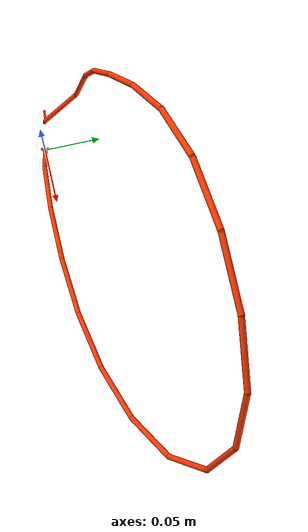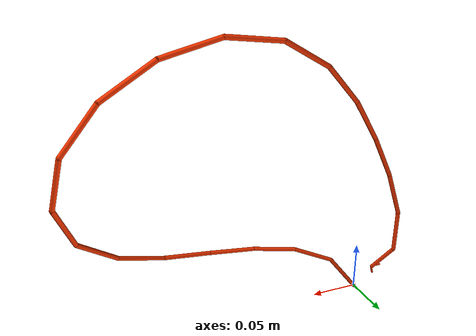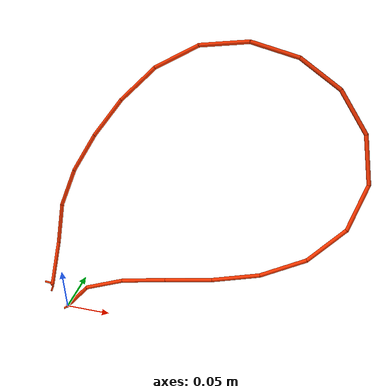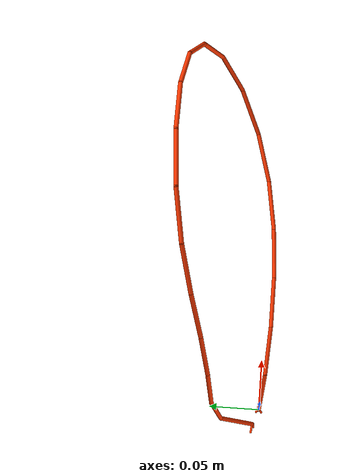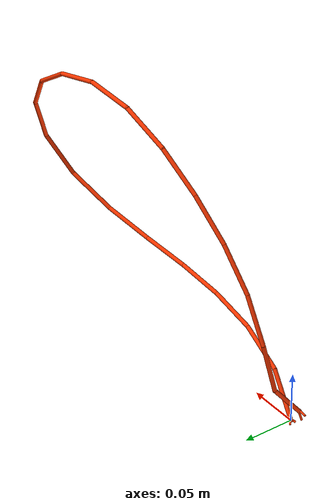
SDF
<sdf version="1.9">
 <model name="cable">
  <link name="cable_end_0">
   <inertial>
    <mass>0.0</mass>
    <inertia><ixx>0.001</ixx><ixy>0</ixy><ixz>0</ixz><iyy>0.001</iyy><iyz>0</iyz><izz>0.001</izz></inertia>
   </inertial>
   <collision name="base_collision">
    <geometry><sphere><radius>0.002</radius></sphere></geometry>
    <surface>
     <friction>
      <torsional><coefficient>0.05</coefficient></torsional>
      <bullet><friction>0.05</friction><friction2>0.05</friction2></bullet>
     </friction>
    </surface>
   </collision>
   <visual name="base_vis">
    <geometry><sphere><radius>0.002</radius></sphere></geometry>
    <material>
     <diffuse>1 0.219999999 0 1</diffuse>
     <specular>0.5 0.5 0.5 1</specular>
     <pbr><metal><roughness>0.01</roughness><metalness>0.01</metalness></metal></pbr>
    </material>
   </visual>
  </link>
  <joint name="joint_end_0" type="ball">
   <pose>-5.9292300000000002e-21 -8.0468100000000002e-20 -0.024 0.024762999999999993 1.7999999999999909e-05 -0.061838999999999998</pose>
   <child>link_1</child>
   <parent>cable_end_0</parent>
   <axis>
    <xyz>1.9813200181550693e-16 -1.5504091066549018e-17 1</xyz>
    <limit>
     <lower>-inf</lower>
     <upper>inf</upper>
     <effort>inf</effort>
     <velocity>inf</velocity>
     <stiffness>100000000</stiffness>
     <dissipation>1</dissipation>
    </limit>
    <dynamics>
     <spring_reference>0</spring_reference>
     <spring_stiffness>0</spring_stiffness>
     <damping>0.20000000000000001</damping>
     <friction>0</friction>
    </dynamics>
   </axis>
  </joint>
  <link name="link_1">
   <pose>0.014819747152165608 -0.0017399206733917372 0.018794240782019161 0.18667383890181891 0.64837595547957994 0.18627118492373859</pose>
   <inertial>
    <mass>0.0</mass>
    <inertia><ixx>0.001</ixx><ixy>0</ixy><ixz>0</ixz><iyy>0.001</iyy><iyz>0</iyz><izz>0.001</izz></inertia>
   </inertial>
   <collision name="link_1_collision">
    <pose>0 0 0.0060000000000000001 0 0 0</pose>
    <geometry><capsule><length>0.036</length><radius>0.002</radius></capsule></geometry>
    <surface>
     <friction>
      <torsional><coefficient>0.050000000000000003</coefficient></torsional>
      <bullet><friction>0.050000000000000003</friction><friction2>0.050000000000000003</friction2></bullet>
     </friction>
    </surface>
   </collision>
   <visual name="link_1_vis">
    <geometry><capsule><length>0.048</length><radius>0.002</radius></capsule></geometry>
    <material>
     <diffuse>1 0.219999999 0 1</diffuse>
     <specular>0.5 0.5 0.5 1</specular>
     <pbr><metal><roughness>0.01</roughness><metalness>0.01</metalness></metal></pbr>
    </material>
   </visual>
  </link>
  <link name="link_2">
   <pose>0.051217620240665118 -0.0045817848733566147 0.048027952526810774 0.71782103551369159 0.95497618826384267 0.76800844832658799</pose>
   <inertial>
    <mass>0.0</mass>
    <inertia><ixx>0.001</ixx><ixy>0</ixy><ixz>0</ixz><iyy>0.001</iyy><iyz>0</iyz><izz>0.001</izz></inertia>
   </inertial>
   <collision name="link_2_collision">
    <geometry><capsule><length>0.048</length><radius>0.002</radius></capsule></geometry>
    <surface>
     <friction>
      <torsional><coefficient>0.050000000000000003</coefficient></torsional>
      <bullet><friction>0.050000000000000003</friction><friction2>0.050000000000000003</friction2></bullet>
     </friction>
    </surface>
   </collision>
   <visual name="link_2_vis">
    <geometry><capsule><length>0.048</length><radius>0.002</radius></capsule></geometry>
    <material>
     <diffuse>1 0.219999999 0 1</diffuse>
     <specular>0.5 0.5 0.5 1</specular>
     <pbr><metal><roughness>0.01</roughness><metalness>0.01</metalness></metal></pbr>
    </material>
   </visual>
  </link>
  <link name="link_3">
   <pose>0.096195168224190386 -0.0055586819898655049 0.063767101721349195 1.2411753795281291 0.81971398965310749 1.3311919485169077</pose>
   <inertial>
    <mass>0.0</mass>
    <inertia><ixx>0.001</ixx><ixy>0</ixy><ixz>0</ixz><iyy>0.001</iyy><iyz>0</iyz><izz>0.001</izz></inertia>
   </inertial>
   <collision name="link_3_collision">
    <geometry><capsule><length>0.048</length><radius>0.002</radius></capsule></geometry>
    <surface>
     <friction>
      <torsional><coefficient>0.050000000000000003</coefficient></torsional>
      <bullet><friction>0.050000000000000003</friction><friction2>0.050000000000000003</friction2></bullet>
     </friction>
    </surface>
   </collision>
   <visual name="link_3_vis">
    <geometry><capsule><length>0.048</length><radius>0.002</radius></capsule></geometry>
    <material>
     <diffuse>1 0.219999999 0 1</diffuse>
     <specular>0.5 0.5 0.5 1</specular>
     <pbr><metal><roughness>0.01</roughness><metalness>0.01</metalness></metal></pbr>
    </material>
   </visual>
  </link>
  <link name="link_4">
   <pose>0.14325005118936951 -0.0037154553753084019 0.072641729123881921 1.4025384617609209 0.47240662802222544 1.5660895369557621</pose>
   <inertial>
    <mass>0.0</mass>
    <inertia><ixx>0.001</ixx><ixy>0</ixy><ixz>0</ixz><iyy>0.001</iyy><iyz>0</iyz><izz>0.001</izz></inertia>
   </inertial>
   <collision name="link_4_collision">
    <geometry><capsule><length>0.048</length><radius>0.002</radius></capsule></geometry>
    <surface>
     <friction>
      <torsional><coefficient>0.050000000000000003</coefficient></torsional>
      <bullet><friction>0.050000000000000003</friction><friction2>0.050000000000000003</friction2></bullet>
     </friction>
    </surface>
   </collision>
   <visual name="link_4_vis">
    <geometry><capsule><length>0.048</length><radius>0.002</radius></capsule></geometry>
    <material>
     <diffuse>1 0.219999999 0 1</diffuse>
     <specular>0.5 0.5 0.5 1</specular>
     <pbr><metal><roughness>0.01</roughness><metalness>0.01</metalness></metal></pbr>
    </material>
   </visual>
  </link>
  <link name="link_5">
   <pose>0.19010418330564605 0.002044484465481694 0.080702087852424748 1.3825902243832859 0.027099831268072066 1.7382011710223997</pose>
   <inertial>
    <mass>0.0</mass>
    <inertia><ixx>0.001</ixx><ixy>0</ixy><ixz>0</ixz><iyy>0.001</iyy><iyz>0</iyz><izz>0.001</izz></inertia>
   </inertial>
   <collision name="link_5_collision">
    <geometry><capsule><length>0.048</length><radius>0.002</radius></capsule></geometry>
    <surface>
     <friction>
      <torsional><coefficient>0.050000000000000003</coefficient></torsional>
      <bullet><friction>0.050000000000000003</friction><friction2>0.050000000000000003</friction2></bullet>
     </friction>
    </surface>
   </collision>
   <visual name="link_5_vis">
    <geometry><capsule><length>0.048</length><radius>0.002</radius></capsule></geometry>
    <material>
     <diffuse>1 0.219999999 0 1</diffuse>
     <specular>0.5 0.5 0.5 1</specular>
     <pbr><metal><roughness>0.01</roughness><metalness>0.01</metalness></metal></pbr>
    </material>
   </visual>
  </link>
  <link name="link_6">
   <pose>0.23471464542253773 0.012878040629696885 0.093441657271720047 1.1755780259895565 -0.46057093362886986 2.0613586099848908</pose>
   <inertial>
    <mass>0.0</mass>
    <inertia><ixx>0.001</ixx><ixy>0</ixy><ixz>0</ixz><iyy>0.001</iyy><iyz>0</iyz><izz>0.001</izz></inertia>
   </inertial>
   <collision name="link_6_collision">
    <geometry><capsule><length>0.048</length><radius>0.002</radius></capsule></geometry>
    <surface>
     <friction>
      <torsional><coefficient>0.05</coefficient></torsional>
      <bullet><friction>0.05</friction><friction2>0.05</friction2></bullet>
     </friction>
    </surface>
   </collision>
   <visual name="link_6_vis">
    <geometry><capsule><length>0.048</length><radius>0.002</radius></capsule></geometry>
    <material>
     <diffuse>1 0.219999999 0 1</diffuse>
     <specular>0.5 0.5 0.5 1</specular>
     <pbr><metal><roughness>0.01</roughness><metalness>0.01</metalness></metal></pbr>
    </material>
   </visual>
  </link>
  <link name="link_7">
   <pose>0.27273856429821186 0.028876552044857784 0.11613283463758543 0.61880592056634154 -0.7341233213716245 2.8322322035791392</pose>
   <inertial>
    <mass>0.0</mass>
    <inertia><ixx>0.001</ixx><ixy>0</ixy><ixz>0</ixz><iyy>0.001</iyy><iyz>0</iyz><izz>0.001</izz></inertia>
   </inertial>
   <collision name="link_7_collision">
    <geometry><capsule><length>0.048</length><radius>0.002</radius></capsule></geometry>
    <surface>
     <friction>
      <torsional><coefficient>0.050000000000000003</coefficient></torsional>
      <bullet><friction>0.050000000000000003</friction><friction2>0.050000000000000003</friction2></bullet>
     </friction>
    </surface>
   </collision>
   <visual name="link_7_vis">
    <geometry><capsule><length>0.048</length><radius>0.002</radius></capsule></geometry>
    <material>
     <diffuse>1 0.219999999 0 1</diffuse>
     <specular>0.5 0.5 0.5 1</specular>
     <pbr><metal><roughness>0.01</roughness><metalness>0.01</metalness></metal></pbr>
    </material>
   </visual>
  </link>
  <link name="link_8">
   <pose>0.29639117909238588 0.048050174628466918 0.15100712317523862 0.22225871726667798 -0.4950676882834748 -2.6299292070296829</pose>
   <inertial>
    <mass>0.0</mass>
    <inertia><ixx>0.001</ixx><ixy>0</ixy><ixz>0</ixz><iyy>0.001</iyy><iyz>0</iyz><izz>0.001</izz></inertia>
   </inertial>
   <collision name="link_8_collision">
    <geometry><capsule><length>0.048</length><radius>0.002</radius></capsule></geometry>
    <surface>
     <friction>
      <torsional><coefficient>0.050000000000000003</coefficient></torsional>
      <bullet><friction>0.050000000000000003</friction><friction2>0.050000000000000003</friction2></bullet>
     </friction>
    </surface>
   </collision>
   <visual name="link_8_vis">
    <geometry><capsule><length>0.048</length><radius>0.002</radius></capsule></geometry>
    <material>
     <diffuse>1 0.219999999 0 1</diffuse>
     <specular>0.5 0.5 0.5 1</specular>
     <pbr><metal><roughness>0.01</roughness><metalness>0.01</metalness></metal></pbr>
    </material>
   </visual>
   <collision name="sphere_8_collision">
    <pose>0 0 0.024 0 0 0</pose>
    <geometry><sphere><radius>0.002</radius></sphere></geometry>
    <surface>
     <friction>
      <torsional><coefficient>0.050000000000000003</coefficient></torsional>
      <bullet><friction>0.050000000000000003</friction><friction2>0.050000000000000003</friction2></bullet>
     </friction>
    </surface>
   </collision>
   <visual name="sphere_8_vis">
    <pose>0 0 0.024 0 0 0</pose>
    <geometry><sphere><radius>0.002</radius></sphere></geometry>
    <material>
     <diffuse>1 0.219999999 0 1</diffuse>
     <specular>0.5 0.5 0.5 1</specular>
     <pbr><metal><roughness>0.01</roughness><metalness>0.01</metalness></metal></pbr>
    </material>
   </visual>
  </link>
  <link name="link_9">
   <pose>0.29883494157350765 0.06604229984663601 0.19343356390563535 0.35289123975868442 -0.18854795280962855 -2.1511196256483762</pose>
   <inertial>
    <mass>0.0</mass>
    <inertia><ixx>0.001</ixx><ixy>0</ixy><ixz>0</ixz><iyy>0.001</iyy><iyz>0</iyz><izz>0.001</izz></inertia>
   </inertial>
   <collision name="link_9_collision">
    <geometry><capsule><length>0.048</length><radius>0.002</radius></capsule></geometry>
    <surface>
     <friction>
      <torsional><coefficient>0.050000000000000003</coefficient></torsional>
      <bullet><friction>0.050000000000000003</friction><friction2>0.050000000000000003</friction2></bullet>
     </friction>
    </surface>
   </collision>
   <visual name="link_9_vis">
    <geometry><capsule><length>0.048</length><radius>0.002</radius></capsule></geometry>
    <material>
     <diffuse>1 0.219999999 0 1</diffuse>
     <specular>0.5 0.5 0.5 1</specular>
     <pbr><metal><roughness>0.01</roughness><metalness>0.01</metalness></metal></pbr>
    </material>
   </visual>
   <collision name="sphere_9_collision">
    <pose>0 0 0.024 0 0 0</pose>
    <geometry><sphere><radius>0.002</radius></sphere></geometry>
    <surface>
     <friction>
      <torsional><coefficient>0.050000000000000003</coefficient></torsional>
      <bullet><friction>0.050000000000000003</friction><friction2>0.050000000000000003</friction2></bullet>
     </friction>
    </surface>
   </collision>
   <visual name="sphere_9_vis">
    <pose>0 0 0.024 0 0 0</pose>
    <geometry><sphere><radius>0.002</radius></sphere></geometry>
    <material>
     <diffuse>1 0.219999999 0 1</diffuse>
     <specular>0.5 0.5 0.5 1</specular>
     <pbr><metal><roughness>0.01</roughness><metalness>0.01</metalness></metal></pbr>
    </material>
   </visual>
  </link>
  <link name="link_10">
   <pose>0.28019441807568857 0.078906295380847286 0.23414893079513596 0.66792593646537202 -0.062195666117625718 -1.8242685532177023</pose>
   <inertial>
    <mass>0.0</mass>
    <inertia><ixx>0.001</ixx><ixy>0</ixy><ixz>0</ixz><iyy>0.001</iyy><iyz>0</iyz><izz>0.001</izz></inertia>
   </inertial>
   <collision name="link_10_collision">
    <geometry><capsule><length>0.048</length><radius>0.002</radius></capsule></geometry>
    <surface>
     <friction>
      <torsional><coefficient>0.050000000000000003</coefficient></torsional>
      <bullet><friction>0.050000000000000003</friction><friction2>0.050000000000000003</friction2></bullet>
     </friction>
    </surface>
   </collision>
   <visual name="link_10_vis">
    <geometry><capsule><length>0.048</length><radius>0.002</radius></capsule></geometry>
    <material>
     <diffuse>1 0.219999999 0 1</diffuse>
     <specular>0.5 0.5 0.5 1</specular>
     <pbr><metal><roughness>0.01</roughness><metalness>0.01</metalness></metal></pbr>
    </material>
   </visual>
   <collision name="sphere_10_collision">
    <pose>0 0 0.024 0 0 0</pose>
    <geometry><sphere><radius>0.002</radius></sphere></geometry>
    <surface>
     <friction>
      <torsional><coefficient>0.050000000000000003</coefficient></torsional>
      <bullet><friction>0.050000000000000003</friction><friction2>0.050000000000000003</friction2></bullet>
     </friction>
    </surface>
   </collision>
   <visual name="sphere_10_vis">
    <pose>0 0 0.024 0 0 0</pose>
    <geometry><sphere><radius>0.002</radius></sphere></geometry>
    <material>
     <diffuse>1 0.219999999 0 1</diffuse>
     <specular>0.5 0.5 0.5 1</specular>
     <pbr><metal><roughness>0.01</roughness><metalness>0.01</metalness></metal></pbr>
    </material>
   </visual>
  </link>
  <link name="link_11">
   <pose>0.24608655512569744 0.085546207874769936 0.26574303981633546 0.9996926413854923 -0.091454028217593672 -1.6017398922236008</pose>
   <inertial>
    <mass>0.0</mass>
    <inertia><ixx>0.001</ixx><ixy>0</ixy><ixz>0</ixz><iyy>0.001</iyy><iyz>0</iyz><izz>0.001</izz></inertia>
   </inertial>
   <collision name="link_11_collision">
    <geometry><capsule><length>0.048</length><radius>0.002</radius></capsule></geometry>
    <surface>
     <friction>
      <torsional><coefficient>0.050000000000000003</coefficient></torsional>
      <bullet><friction>0.050000000000000003</friction><friction2>0.050000000000000003</friction2></bullet>
     </friction>
    </surface>
   </collision>
   <visual name="link_11_vis">
    <geometry><capsule><length>0.048</length><radius>0.002</radius></capsule></geometry>
    <material>
     <diffuse>1 0.219999999 0 1</diffuse>
     <specular>0.5 0.5 0.5 1</specular>
     <pbr><metal><roughness>0.01</roughness><metalness>0.01</metalness></metal></pbr>
    </material>
   </visual>
   <collision name="sphere_11_collision">
    <pose>0 0 0.024 0 0 0</pose>
    <geometry><sphere><radius>0.002</radius></sphere></geometry>
    <surface>
     <friction>
      <torsional><coefficient>0.050000000000000003</coefficient></torsional>
      <bullet><friction>0.050000000000000003</friction><friction2>0.050000000000000003</friction2></bullet>
     </friction>
    </surface>
   </collision>
   <visual name="sphere_11_vis">
    <pose>0 0 0.024 0 0 0</pose>
    <geometry><sphere><radius>0.002</radius></sphere></geometry>
    <material>
     <diffuse>1 0.219999999 0 1</diffuse>
     <specular>0.5 0.5 0.5 1</specular>
     <pbr><metal><roughness>0.01</roughness><metalness>0.01</metalness></metal></pbr>
    </material>
   </visual>
  </link>
  <link name="link_12">
   <pose>0.20287489352286281 0.086985596607584398 0.28442008764742138 1.317518732075605 -0.23865626183528538 -1.4938780196794386</pose>
   <inertial>
    <mass>0.0</mass>
    <inertia><ixx>0.001</ixx><ixy>0</ixy><ixz>0</ixz><iyy>0.001</iyy><iyz>0</iyz><izz>0.001</izz></inertia>
   </inertial>
   <collision name="link_12_collision">
    <geometry><capsule><length>0.048</length><radius>0.002</radius></capsule></geometry>
    <surface>
     <friction>
      <torsional><coefficient>0.050000000000000003</coefficient></torsional>
      <bullet><friction>0.050000000000000003</friction><friction2>0.050000000000000003</friction2></bullet>
     </friction>
    </surface>
   </collision>
   <visual name="link_12_vis">
    <geometry><capsule><length>0.048</length><radius>0.002</radius></capsule></geometry>
    <material>
     <diffuse>1 0.219999999 0 1</diffuse>
     <specular>0.5 0.5 0.5 1</specular>
     <pbr><metal><roughness>0.01</roughness><metalness>0.01</metalness></metal></pbr>
    </material>
   </visual>
   <collision name="sphere_12_collision">
    <pose>0 0 0.024 0 0 0</pose>
    <geometry><sphere><radius>0.002</radius></sphere></geometry>
    <surface>
     <friction>
      <torsional><coefficient>0.050000000000000003</coefficient></torsional>
      <bullet><friction>0.050000000000000003</friction><friction2>0.050000000000000003</friction2></bullet>
     </friction>
    </surface>
   </collision>
   <visual name="sphere_12_vis">
    <pose>0 0 0.024 0 0 0</pose>
    <geometry><sphere><radius>0.002</radius></sphere></geometry>
    <material>
     <diffuse>1 0.219999999 0 1</diffuse>
     <specular>0.5 0.5 0.5 1</specular>
     <pbr><metal><roughness>0.01</roughness><metalness>0.01</metalness></metal></pbr>
    </material>
   </visual>
  </link>
  <link name="link_13">
   <pose>0.15618997105147026 0.084697426921248237 0.28746919512180302 1.7024008950349943 -0.48041282097612337 -1.5495117244976766</pose>
   <inertial>
    <mass>0.0</mass>
    <inertia><ixx>0.001</ixx><ixy>0</ixy><ixz>0</ixz><iyy>0.001</iyy><iyz>0</iyz><izz>0.001</izz></inertia>
   </inertial>
   <collision name="link_13_collision">
    <geometry><capsule><length>0.048</length><radius>0.002</radius></capsule></geometry>
    <surface>
     <friction>
      <torsional><coefficient>0.050000000000000003</coefficient></torsional>
      <bullet><friction>0.050000000000000003</friction><friction2>0.050000000000000003</friction2></bullet>
     </friction>
    </surface>
   </collision>
   <visual name="link_13_vis">
    <geometry><capsule><length>0.048</length><radius>0.002</radius></capsule></geometry>
    <material>
     <diffuse>1 0.219999999 0 1</diffuse>
     <specular>0.5 0.5 0.5 1</specular>
     <pbr><metal><roughness>0.01</roughness><metalness>0.01</metalness></metal></pbr>
    </material>
   </visual>
   <collision name="sphere_13_collision">
    <pose>0 0 0.024 0 0 0</pose>
    <geometry><sphere><radius>0.002</radius></sphere></geometry>
    <surface>
     <friction>
      <torsional><coefficient>0.050000000000000003</coefficient></torsional>
      <bullet><friction>0.050000000000000003</friction><friction2>0.050000000000000003</friction2></bullet>
     </friction>
    </surface>
   </collision>
   <visual name="sphere_13_vis">
    <pose>0 0 0.024 0 0 0</pose>
    <geometry><sphere><radius>0.002</radius></sphere></geometry>
    <material>
     <diffuse>1 0.219999999 0 1</diffuse>
     <specular>0.5 0.5 0.5 1</specular>
     <pbr><metal><roughness>0.01</roughness><metalness>0.01</metalness></metal></pbr>
    </material>
   </visual>
  </link>
  <link name="link_14">
   <pose>0.11195389107540676 0.079182014482695323 0.27351702068747452 2.2450652421190944 -0.71752619639368909 -1.882468111688552</pose>
   <inertial>
    <mass>0.0</mass>
    <inertia><ixx>0.001</ixx><ixy>0</ixy><ixz>0</ixz><iyy>0.001</iyy><iyz>0</iyz><izz>0.001</izz></inertia>
   </inertial>
   <collision name="link_14_collision">
    <geometry><capsule><length>0.048</length><radius>0.002</radius></capsule></geometry>
    <surface>
     <friction>
      <torsional><coefficient>0.050000000000000003</coefficient></torsional>
      <bullet><friction>0.050000000000000003</friction><friction2>0.050000000000000003</friction2></bullet>
     </friction>
    </surface>
   </collision>
   <visual name="link_14_vis">
    <geometry><capsule><length>0.048</length><radius>0.002</radius></capsule></geometry>
    <material>
     <diffuse>1 0.219999999 0 1</diffuse>
     <specular>0.5 0.5 0.5 1</specular>
     <pbr><metal><roughness>0.01</roughness><metalness>0.01</metalness></metal></pbr>
    </material>
   </visual>
   <collision name="sphere_14_collision">
    <pose>0 0 0.024 0 0 0</pose>
    <geometry><sphere><radius>0.002</radius></sphere></geometry>
    <surface>
     <friction>
      <torsional><coefficient>0.050000000000000003</coefficient></torsional>
      <bullet><friction>0.050000000000000003</friction><friction2>0.050000000000000003</friction2></bullet>
     </friction>
    </surface>
   </collision>
   <visual name="sphere_14_vis">
    <pose>0 0 0.024 0 0 0</pose>
    <geometry><sphere><radius>0.002</radius></sphere></geometry>
    <material>
     <diffuse>1 0.219999999 0 1</diffuse>
     <specular>0.5 0.5 0.5 1</specular>
     <pbr><metal><roughness>0.01</roughness><metalness>0.01</metalness></metal></pbr>
    </material>
   </visual>
  </link>
  <link name="link_15">
   <pose>0.074470012931548091 0.070861155598836684 0.24598411243864993 2.8346842567993424 -0.77104715779046407 -2.439808815250486</pose>
   <inertial>
    <mass>0.0</mass>
    <inertia><ixx>0.001</ixx><ixy>0</ixy><ixz>0</ixz><iyy>0.001</iyy><iyz>0</iyz><izz>0.001</izz></inertia>
   </inertial>
   <collision name="link_15_collision">
    <geometry><capsule><length>0.048</length><radius>0.002</radius></capsule></geometry>
    <surface>
     <friction>
      <torsional><coefficient>0.050000000000000003</coefficient></torsional>
      <bullet><friction>0.050000000000000003</friction><friction2>0.050000000000000003</friction2></bullet>
     </friction>
    </surface>
   </collision>
   <visual name="link_15_vis">
    <geometry><capsule><length>0.048</length><radius>0.002</radius></capsule></geometry>
    <material>
     <diffuse>1 0.219999999 0 1</diffuse>
     <specular>0.5 0.5 0.5 1</specular>
     <pbr><metal><roughness>0.01</roughness><metalness>0.01</metalness></metal></pbr>
    </material>
   </visual>
   <collision name="sphere_15_collision">
    <pose>0 0 0.024 0 0 0</pose>
    <geometry><sphere><radius>0.002</radius></sphere></geometry>
    <surface>
     <friction>
      <torsional><coefficient>0.050000000000000003</coefficient></torsional>
      <bullet><friction>0.050000000000000003</friction><friction2>0.050000000000000003</friction2></bullet>
     </friction>
    </surface>
   </collision>
   <visual name="sphere_15_vis">
    <pose>0 0 0.024 0 0 0</pose>
    <geometry><sphere><radius>0.002</radius></sphere></geometry>
    <material>
     <diffuse>1 0.219999999 0 1</diffuse>
     <specular>0.5 0.5 0.5 1</specular>
     <pbr><metal><roughness>0.01</roughness><metalness>0.01</metalness></metal></pbr>
    </material>
   </visual>
  </link>
  <link name="link_16">
   <pose>0.043548977720494708 0.061318958805630347 0.21089491444488995 -3.0634429596784147 -0.66854836615188551 -2.9390402042338439</pose>
   <inertial>
    <mass>0.0</mass>
    <inertia><ixx>0.001</ixx><ixy>0</ixy><ixz>0</ixz><iyy>0.001</iyy><iyz>0</iyz><izz>0.001</izz></inertia>
   </inertial>
   <collision name="link_16_collision">
    <geometry><capsule><length>0.048</length><radius>0.002</radius></capsule></geometry>
    <surface>
     <friction>
      <torsional><coefficient>0.050000000000000003</coefficient></torsional>
      <bullet><friction>0.050000000000000003</friction><friction2>0.050000000000000003</friction2></bullet>
     </friction>
    </surface>
   </collision>
   <visual name="link_16_vis">
    <geometry><capsule><length>0.048</length><radius>0.002</radius></capsule></geometry>
    <material>
     <diffuse>1 0.219999999 0 1</diffuse>
     <specular>0.5 0.5 0.5 1</specular>
     <pbr><metal><roughness>0.01</roughness><metalness>0.01</metalness></metal></pbr>
    </material>
   </visual>
   <collision name="sphere_16_collision">
    <pose>0 0 0.024 0 0 0</pose>
    <geometry><sphere><radius>0.002</radius></sphere></geometry>
    <surface>
     <friction>
      <torsional><coefficient>0.050000000000000003</coefficient></torsional>
      <bullet><friction>0.050000000000000003</friction><friction2>0.050000000000000003</friction2></bullet>
     </friction>
    </surface>
   </collision>
   <visual name="sphere_16_vis">
    <pose>0 0 0.024 0 0 0</pose>
    <geometry><sphere><radius>0.002</radius></sphere></geometry>
    <material>
     <diffuse>1 0.219999999 0 1</diffuse>
     <specular>0.5 0.5 0.5 1</specular>
     <pbr><metal><roughness>0.01</roughness><metalness>0.01</metalness></metal></pbr>
    </material>
   </visual>
  </link>
  <link name="link_17">
   <pose>0.017193029227812406 0.052931689669931198 0.17182799838632967 -2.8973817899317043 -0.509214211852966 2.9537288827374897</pose>
   <inertial>
    <mass>0.0</mass>
    <inertia><ixx>0.001</ixx><ixy>0</ixy><ixz>0</ixz><iyy>0.001</iyy><iyz>0</iyz><izz>0.001</izz></inertia>
   </inertial>
   <collision name="link_17_collision">
    <geometry><capsule><length>0.048</length><radius>0.002</radius></capsule></geometry>
    <surface>
     <friction>
      <torsional><coefficient>0.050000000000000003</coefficient></torsional>
      <bullet><friction>0.050000000000000003</friction><friction2>0.050000000000000003</friction2></bullet>
     </friction>
    </surface>
   </collision>
   <visual name="link_17_vis">
    <geometry><capsule><length>0.048</length><radius>0.002</radius></capsule></geometry>
    <material>
     <diffuse>1 0.219999999 0 1</diffuse>
     <specular>0.5 0.5 0.5 1</specular>
     <pbr><metal><roughness>0.01</roughness><metalness>0.01</metalness></metal></pbr>
    </material>
   </visual>
   <collision name="sphere_17_collision">
    <pose>0 0 0.024 0 0 0</pose>
    <geometry><sphere><radius>0.002</radius></sphere></geometry>
    <surface>
     <friction>
      <torsional><coefficient>0.050000000000000003</coefficient></torsional>
      <bullet><friction>0.050000000000000003</friction><friction2>0.050000000000000003</friction2></bullet>
     </friction>
    </surface>
   </collision>
   <visual name="sphere_17_vis">
    <pose>0 0 0.024 0 0 0</pose>
    <geometry><sphere><radius>0.002</radius></sphere></geometry>
    <material>
     <diffuse>1 0.219999999 0 1</diffuse>
     <specular>0.5 0.5 0.5 1</specular>
     <pbr><metal><roughness>0.01</roughness><metalness>0.01</metalness></metal></pbr>
    </material>
   </visual>
  </link>
  <link name="link_18">
   <pose>-0.004224603850605968 0.047277245818884234 0.12944388362441953 -2.876163563677991 -0.30765329344395254 2.6324409242363034</pose>
   <inertial>
    <mass>0.0</mass>
    <inertia><ixx>0.001</ixx><ixy>0</ixy><ixz>0</ixz><iyy>0.001</iyy><iyz>0</iyz><izz>0.001</izz></inertia>
   </inertial>
   <collision name="link_18_collision">
    <geometry><capsule><length>0.048</length><radius>0.002</radius></capsule></geometry>
    <surface>
     <friction>
      <torsional><coefficient>0.050000000000000003</coefficient></torsional>
      <bullet><friction>0.050000000000000003</friction><friction2>0.050000000000000003</friction2></bullet>
     </friction>
    </surface>
   </collision>
   <visual name="link_18_vis">
    <geometry><capsule><length>0.048</length><radius>0.002</radius></capsule></geometry>
    <material>
     <diffuse>1 0.219999999 0 1</diffuse>
     <specular>0.5 0.5 0.5 1</specular>
     <pbr><metal><roughness>0.01</roughness><metalness>0.01</metalness></metal></pbr>
    </material>
   </visual>
   <collision name="sphere_18_collision">
    <pose>0 0 0.024 0 0 0</pose>
    <geometry><sphere><radius>0.002</radius></sphere></geometry>
    <surface>
     <friction>
      <torsional><coefficient>0.050000000000000003</coefficient></torsional>
      <bullet><friction>0.050000000000000003</friction><friction2>0.050000000000000003</friction2></bullet>
     </friction>
    </surface>
   </collision>
   <visual name="sphere_18_vis">
    <pose>0 0 0.024 0 0 0</pose>
    <geometry><sphere><radius>0.002</radius></sphere></geometry>
    <material>
     <diffuse>1 0.219999999 0 1</diffuse>
     <specular>0.5 0.5 0.5 1</specular>
     <pbr><metal><roughness>0.01</roughness><metalness>0.01</metalness></metal></pbr>
    </material>
   </visual>
  </link>
  <link name="link_19">
   <pose>-0.016731545993425412 0.040756431993467651 0.084032587722441932 -2.9107842690624079 0.033749791185127644 2.3574664764618625</pose>
   <inertial>
    <mass>0.0</mass>
    <inertia><ixx>0.001</ixx><ixy>0</ixy><ixz>0</ixz><iyy>0.001</iyy><iyz>0</iyz><izz>0.001</izz></inertia>
   </inertial>
   <collision name="link_19_collision">
    <geometry><capsule><length>0.048</length><radius>0.002</radius></capsule></geometry>
    <surface>
     <friction>
      <torsional><coefficient>0.050000000000000003</coefficient></torsional>
      <bullet><friction>0.050000000000000003</friction><friction2>0.050000000000000003</friction2></bullet>
     </friction>
    </surface>
   </collision>
   <visual name="link_19_vis">
    <geometry><capsule><length>0.048</length><radius>0.002</radius></capsule></geometry>
    <material>
     <diffuse>1 0.219999999 0 1</diffuse>
     <specular>0.5 0.5 0.5 1</specular>
     <pbr><metal><roughness>0.01</roughness><metalness>0.01</metalness></metal></pbr>
    </material>
   </visual>
   <collision name="sphere_19_collision">
    <pose>0 0 0.024 0 0 0</pose>
    <geometry><sphere><radius>0.002</radius></sphere></geometry>
    <surface>
     <friction>
      <torsional><coefficient>0.050000000000000003</coefficient></torsional>
      <bullet><friction>0.050000000000000003</friction><friction2>0.050000000000000003</friction2></bullet>
     </friction>
    </surface>
   </collision>
   <visual name="sphere_19_vis">
    <pose>0 0 0.024 0 0 0</pose>
    <geometry><sphere><radius>0.002</radius></sphere></geometry>
    <material>
     <diffuse>1 0.219999999 0 1</diffuse>
     <specular>0.5 0.5 0.5 1</specular>
     <pbr><metal><roughness>0.01</roughness><metalness>0.01</metalness></metal></pbr>
    </material>
   </visual>
  </link>
  <link name="link_20">
   <pose>-0.019105099661882896 0.021072618098588264 0.042173558124603744 -2.8379086168062377 0.6292671281148251 2.1220102744151093</pose>
   <inertial>
    <mass>0.0</mass>
    <inertia><ixx>0.001</ixx><ixy>0</ixy><ixz>0</ixz><iyy>0.001</iyy><iyz>0</iyz><izz>0.001</izz></inertia>
   </inertial>
   <collision name="link_20_collision">
    <geometry><capsule><length>0.048</length><radius>0.002</radius></capsule></geometry>
    <surface>
     <friction>
      <torsional><coefficient>0.050000000000000003</coefficient></torsional>
      <bullet><friction>0.050000000000000003</friction><friction2>0.050000000000000003</friction2></bullet>
     </friction>
    </surface>
   </collision>
   <visual name="link_20_vis">
    <geometry><capsule><length>0.048</length><radius>0.002</radius></capsule></geometry>
    <material>
     <diffuse>1 0.219999999 0 1</diffuse>
     <specular>0.5 0.5 0.5 1</specular>
     <pbr><metal><roughness>0.01</roughness><metalness>0.01</metalness></metal></pbr>
    </material>
   </visual>
   <collision name="sphere_20_collision">
    <pose>0 0 0.024 0 0 0</pose>
    <geometry><sphere><radius>0.002</radius></sphere></geometry>
    <surface>
     <friction>
      <torsional><coefficient>0.050000000000000003</coefficient></torsional>
      <bullet><friction>0.050000000000000003</friction><friction2>0.050000000000000003</friction2></bullet>
     </friction>
    </surface>
   </collision>
   <visual name="sphere_20_vis">
    <pose>0 0 0.024 0 0 0</pose>
    <geometry><sphere><radius>0.002</radius></sphere></geometry>
    <material>
     <diffuse>1 0.219999999 0 1</diffuse>
     <specular>0.5 0.5 0.5 1</specular>
     <pbr><metal><roughness>0.01</roughness><metalness>0.01</metalness></metal></pbr>
    </material>
   </visual>
  </link>
  <joint name="joint_1" type="ball">
   <pose>-1.0842e-19 8.6736199999999997e-19 -0.024 0.057665000000000015 -0.0035260000000000005 -0.14366599999999999</pose>
   <parent>link_1</parent>
   <child>link_2</child>
   <axis>
    <xyz>-2.5557355710914553e-16 -6.9392327170861326e-17 1</xyz>
    <limit>
     <lower>-inf</lower>
     <upper>inf</upper>
     <effort>inf</effort>
     <velocity>inf</velocity>
     <stiffness>100000000</stiffness>
     <dissipation>1</dissipation>
    </limit>
    <dynamics>
     <spring_reference>0</spring_reference>
     <spring_stiffness>0</spring_stiffness>
     <damping>0.20000000000000001</damping>
     <friction>0</friction>
    </dynamics>
   </axis>
  </joint>
  <joint name="joint_2" type="ball">
   <pose>8.6736199999999997e-19 1.73472e-18 -0.024 0.072919999999999971 -0.015119999999999996 -0.18287300000000001</pose>
   <parent>link_2</parent>
   <child>link_3</child>
   <axis>
    <xyz>-4.336808689942141e-19 6.2558465352413594e-17 1</xyz>
    <limit>
     <lower>-inf</lower>
     <upper>inf</upper>
     <effort>inf</effort>
     <velocity>inf</velocity>
     <stiffness>100000000</stiffness>
     <dissipation>1</dissipation>
    </limit>
    <dynamics>
     <spring_reference>0</spring_reference>
     <spring_stiffness>0</spring_stiffness>
     <damping>0.20000000000000001</damping>
     <friction>0</friction>
    </dynamics>
   </axis>
  </joint>
  <joint name="joint_3" type="ball">
   <pose>0 0 -0.024 0.09283799999999999 -0.037758000000000028 -0.23843600000000004</pose>
   <parent>link_3</parent>
   <child>link_4</child>
   <axis>
    <xyz>-1.1102230246251565e-16 1.1102230246251564e-16 1</xyz>
    <limit>
     <lower>-inf</lower>
     <upper>inf</upper>
     <effort>inf</effort>
     <velocity>inf</velocity>
     <stiffness>100000000</stiffness>
     <dissipation>1</dissipation>
    </limit>
    <dynamics>
     <spring_reference>0</spring_reference>
     <spring_stiffness>0</spring_stiffness>
     <damping>0.20000000000000001</damping>
     <friction>0</friction>
    </dynamics>
   </axis>
  </joint>
  <joint name="joint_4" type="ball">
   <pose>-1.3877799999999999e-17 -3.1224999999999998e-17 -0.024 0.11562100000000003 -0.082796999999999996 -0.31582500000000002</pose>
   <parent>link_4</parent>
   <child>link_5</child>
   <axis>
    <xyz>1.3183898417423731e-16 5.5511151231257827e-17 1</xyz>
    <limit>
     <lower>-inf</lower>
     <upper>inf</upper>
     <effort>inf</effort>
     <velocity>inf</velocity>
     <stiffness>100000000</stiffness>
     <dissipation>1</dissipation>
    </limit>
    <dynamics>
     <spring_reference>0</spring_reference>
     <spring_stiffness>0</spring_stiffness>
     <damping>0.20000000000000001</damping>
     <friction>0</friction>
    </dynamics>
   </axis>
  </joint>
  <joint name="joint_5" type="ball">
   <pose>2.7755599999999997e-17 6.9388900000000004e-18 -0.024 0.12748000000000004 -0.17044200000000007 -0.41081300000000026</pose>
   <parent>link_5</parent>
   <child>link_6</child>
   <axis>
    <xyz>-2.0816681711721636e-17 1.1102230246251565e-16 1</xyz>
    <limit>
     <lower>-inf</lower>
     <upper>inf</upper>
     <effort>inf</effort>
     <velocity>inf</velocity>
     <stiffness>100000000</stiffness>
     <dissipation>1</dissipation>
    </limit>
    <dynamics>
     <spring_reference>0</spring_reference>
     <spring_stiffness>0</spring_stiffness>
     <damping>0.20000000000000001</damping>
     <friction>0</friction>
    </dynamics>
   </axis>
  </joint>
  <joint name="joint_6" type="ball">
   <pose>0 -1.3877799999999999e-17 -0.024 0.077454999999999954 -0.3108280000000001 -0.47354099999999982</pose>
   <parent>link_6</parent>
   <child>link_7</child>
   <axis>
    <xyz>-5.8980598183211417e-17 1.3877787807814417e-17 1</xyz>
    <limit>
     <lower>-inf</lower>
     <upper>inf</upper>
     <effort>inf</effort>
     <velocity>inf</velocity>
     <stiffness>100000000</stiffness>
     <dissipation>1</dissipation>
    </limit>
    <dynamics>
     <spring_reference>0</spring_reference>
     <spring_stiffness>0</spring_stiffness>
     <damping>0.20000000000000001</damping>
     <friction>0</friction>
    </dynamics>
   </axis>
  </joint>
  <joint name="joint_7" type="ball">
   <pose>-2.7755599999999997e-17 0 -0.024 -0.099142999999999981 -0.40827100000000011 -0.39838499999999988</pose>
   <parent>link_7</parent>
   <child>link_8</child>
   <axis>
    <xyz>2.2985086056692689e-16 1.960237527853792e-16 1</xyz>
    <limit>
     <lower>-inf</lower>
     <upper>inf</upper>
     <effort>inf</effort>
     <velocity>inf</velocity>
     <stiffness>100000000</stiffness>
     <dissipation>1</dissipation>
    </limit>
    <dynamics>
     <spring_reference>0</spring_reference>
     <spring_stiffness>0</spring_stiffness>
     <damping>0.20000000000000001</damping>
     <friction>0</friction>
    </dynamics>
   </axis>
  </joint>
  <joint name="joint_8" type="ball">
   <pose>-5.5511199999999995e-17 -5.5511199999999995e-17 -0.024 -0.25860899999999998 -0.32846800000000009 -0.24861</pose>
   <parent>link_8</parent>
   <child>link_9</child>
   <axis>
    <xyz>-2.684484579074109e-16 1.5265566588595902e-16 1</xyz>
    <limit>
     <lower>-inf</lower>
     <upper>inf</upper>
     <effort>inf</effort>
     <velocity>inf</velocity>
     <stiffness>100000000</stiffness>
     <dissipation>1</dissipation>
    </limit>
    <dynamics>
     <spring_reference>0</spring_reference>
     <spring_stiffness>0</spring_stiffness>
     <damping>0.20000000000000001</damping>
     <friction>0</friction>
    </dynamics>
   </axis>
  </joint>
  <joint name="joint_9" type="ball">
   <pose>0 0 -0.024 -0.28042499999999998 -0.20139399999999993 -0.16083399999999995</pose>
   <parent>link_9</parent>
   <child>link_10</child>
   <axis>
    <xyz>-7.2858385991025898e-17 -1.0408340855860843e-16 1</xyz>
    <limit>
     <lower>-inf</lower>
     <upper>inf</upper>
     <effort>inf</effort>
     <velocity>inf</velocity>
     <stiffness>100000000</stiffness>
     <dissipation>1</dissipation>
    </limit>
    <dynamics>
     <spring_reference>0</spring_reference>
     <spring_stiffness>0</spring_stiffness>
     <damping>0.20000000000000001</damping>
     <friction>0</friction>
    </dynamics>
   </axis>
  </joint>
  <joint name="joint_10" type="ball">
   <pose>0 0 -0.024 -0.2767980000000001 -0.13009000000000007 -0.12658500000000003</pose>
   <parent>link_10</parent>
   <child>link_11</child>
   <axis>
    <xyz>-1.7347234759768117e-17 -8.3266726846886716e-17 1</xyz>
    <limit>
     <lower>-inf</lower>
     <upper>inf</upper>
     <effort>inf</effort>
     <velocity>inf</velocity>
     <stiffness>100000000</stiffness>
     <dissipation>1</dissipation>
    </limit>
    <dynamics>
     <spring_reference>0</spring_reference>
     <spring_stiffness>0</spring_stiffness>
     <damping>0.20000000000000001</damping>
     <friction>0</friction>
    </dynamics>
   </axis>
  </joint>
  <joint name="joint_11" type="ball">
   <pose>-6.9388900000000004e-18 0 -0.024 -0.31800899999999988 -0.097124000000000016 -0.12714500000000001</pose>
   <parent>link_11</parent>
   <child>link_12</child>
   <axis>
    <xyz>-1.3877787807814457e-17 5.5511151231257827e-17 1</xyz>
    <limit>
     <lower>-inf</lower>
     <upper>inf</upper>
     <effort>inf</effort>
     <velocity>inf</velocity>
     <stiffness>100000000</stiffness>
     <dissipation>1</dissipation>
    </limit>
    <dynamics>
     <spring_reference>0</spring_reference>
     <spring_stiffness>0</spring_stiffness>
     <damping>0.20000000000000001</damping>
     <friction>0</friction>
    </dynamics>
   </axis>
  </joint>
  <joint name="joint_12" type="ball">
   <pose>4.3368099999999998e-19 0 -0.024 -0.41514299999999998 -0.064825000000000021 -0.15662800000000004</pose>
   <parent>link_12</parent>
   <child>link_13</child>
   <axis>
    <xyz>4.8572257327350599e-16 3.8163916471489559e-17 1</xyz>
    <limit>
     <lower>-inf</lower>
     <upper>inf</upper>
     <effort>inf</effort>
     <velocity>inf</velocity>
     <stiffness>100000000</stiffness>
     <dissipation>1</dissipation>
    </limit>
    <dynamics>
     <spring_reference>0</spring_reference>
     <spring_stiffness>0</spring_stiffness>
     <damping>0.20000000000000001</damping>
     <friction>0</friction>
    </dynamics>
   </axis>
  </joint>
  <joint name="joint_13" type="ball">
   <pose>0 2.7755599999999997e-17 -0.024 -0.47514499999999982 0.00481899999999999 -0.19548199999999996</pose>
   <parent>link_13</parent>
   <child>link_14</child>
   <axis>
    <xyz>4.157915331481907e-17 -5.5511151231257815e-17 1</xyz>
    <limit>
     <lower>-inf</lower>
     <upper>inf</upper>
     <effort>inf</effort>
     <velocity>inf</velocity>
     <stiffness>100000000</stiffness>
     <dissipation>1</dissipation>
    </limit>
    <dynamics>
     <spring_reference>0</spring_reference>
     <spring_stiffness>0</spring_stiffness>
     <damping>0.20000000000000001</damping>
     <friction>0</friction>
    </dynamics>
   </axis>
  </joint>
  <joint name="joint_14" type="ball">
   <pose>1.3877799999999999e-17 -5.5511199999999995e-17 -0.024 -0.37640199999999963 0.076180000000000053 -0.18553599999999995</pose>
   <parent>link_14</parent>
   <child>link_15</child>
   <axis>
    <xyz>5.5511151231257815e-17 7.6327832942979512e-17 1</xyz>
    <limit>
     <lower>-inf</lower>
     <upper>inf</upper>
     <effort>inf</effort>
     <velocity>inf</velocity>
     <stiffness>100000000</stiffness>
     <dissipation>1</dissipation>
    </limit>
    <dynamics>
     <spring_reference>0</spring_reference>
     <spring_stiffness>0</spring_stiffness>
     <damping>0.20000000000000001</damping>
     <friction>0</friction>
    </dynamics>
   </axis>
  </joint>
  <joint name="joint_15" type="ball">
   <pose>1.73472e-17 -9.7144500000000003e-17 -0.024 -0.23104200000000003 0.090075999999999989 -0.13426600000000005</pose>
   <parent>link_15</parent>
   <child>link_16</child>
   <axis>
    <xyz>5.2041704279304201e-17 -8.3266726846886728e-17 1</xyz>
    <limit>
     <lower>-inf</lower>
     <upper>inf</upper>
     <effort>inf</effort>
     <velocity>inf</velocity>
     <stiffness>100000000</stiffness>
     <dissipation>1</dissipation>
    </limit>
    <dynamics>
     <spring_reference>0</spring_reference>
     <spring_stiffness>0</spring_stiffness>
     <damping>0.20000000000000001</damping>
     <friction>0</friction>
    </dynamics>
   </axis>
  </joint>
  <joint name="joint_16" type="ball">
   <pose>3.4694499999999997e-18 -5.5511199999999995e-17 -0.024 -0.13905600000000001 0.075479000000000004 -0.092463999999999991</pose>
   <parent>link_16</parent>
   <child>link_17</child>
   <axis>
    <xyz>1.3877787807814444e-17 -2.7755575615628907e-17 1</xyz>
    <limit>
     <lower>-inf</lower>
     <upper>inf</upper>
     <effort>inf</effort>
     <velocity>inf</velocity>
     <stiffness>100000000</stiffness>
     <dissipation>1</dissipation>
    </limit>
    <dynamics>
     <spring_reference>0</spring_reference>
     <spring_stiffness>0</spring_stiffness>
     <damping>0.20000000000000001</damping>
     <friction>0</friction>
    </dynamics>
   </axis>
  </joint>
  <joint name="joint_17" type="ball">
   <pose>-1.04083e-17 6.9388900000000004e-18 -0.024 -0.089686000000000002 0.059461 -0.066655000000000006</pose>
   <parent>link_17</parent>
   <child>link_18</child>
   <axis>
    <xyz>1.6653345369377343e-16 -2.775557561562892e-17 1</xyz>
    <limit>
     <lower>-inf</lower>
     <upper>inf</upper>
     <effort>inf</effort>
     <velocity>inf</velocity>
     <stiffness>100000000</stiffness>
     <dissipation>1</dissipation>
    </limit>
    <dynamics>
     <spring_reference>0</spring_reference>
     <spring_stiffness>0</spring_stiffness>
     <damping>0.20000000000000001</damping>
     <friction>0</friction>
    </dynamics>
   </axis>
  </joint>
  <joint name="joint_18" type="ball">
   <pose>-3.4694499999999997e-18 -2.7755599999999997e-17 -0.024 -0.062118000000000013 0.047213000000000012 -0.050650000000000014</pose>
   <parent>link_18</parent>
   <child>link_19</child>
   <axis>
    <xyz>4.4408920985006262e-16 9.6277152916712794e-17 1</xyz>
    <limit>
     <lower>-inf</lower>
     <upper>inf</upper>
     <effort>inf</effort>
     <velocity>inf</velocity>
     <stiffness>100000000</stiffness>
     <dissipation>1</dissipation>
    </limit>
    <dynamics>
     <spring_reference>0</spring_reference>
     <spring_stiffness>0</spring_stiffness>
     <damping>0.20000000000000001</damping>
     <friction>0</friction>
    </dynamics>
   </axis>
  </joint>
  <joint name="joint_19" type="ball">
   <pose>-6.9388900000000004e-18 -6.9388900000000004e-18 -0.024 -0.045549999999999986 0.038313000000000014 -0.040162000000000003</pose>
   <parent>link_19</parent>
   <child>link_20</child>
   <axis>
    <xyz>1.8735013540549514e-16 2.7755575615628914e-16 1</xyz>
    <limit>
     <lower>-inf</lower>
     <upper>inf</upper>
     <effort>inf</effort>
     <velocity>inf</velocity>
     <stiffness>100000000</stiffness>
     <dissipation>1</dissipation>
    </limit>
    <dynamics>
     <spring_reference>0</spring_reference>
     <spring_stiffness>0</spring_stiffness>
     <damping>0.20000000000000001</damping>
     <friction>0</friction>
    </dynamics>
   </axis>
  </joint>
  <link name="cable_connection_0">
   <inertial>
    <mass>0.01</mass>
    <inertia><ixx>1e-03</ixx><ixy>0</ixy><ixz>0</ixz><iyy>1e-03</iyy><iyz>0</iyz><izz>1e-03</izz></inertia>
   </inertial>
   <pose>1.7161193510695227e-07 -2.0317050514195856e-08 -2.0573089890008056e-07 -0.21237071140616082 -0.63195479276709987 0.038809485418558186</pose>
   <collision name="collision_0">
    <pose>-0.0018027756377319948 0.002 0 0.5880026035475675 1.57079 0</pose>
    <geometry><cylinder><radius>0.001</radius><length>0.0036055512754639895</length></cylinder></geometry>
    <surface>
     <friction>
      <torsional><coefficient>0.05</coefficient></torsional>
      <bullet><friction>0.05</friction><friction2>0.05</friction2></bullet>
     </friction>
    </surface>
   </collision>
   <visual name="visual_0">
    <pose>-0.0018027756377319948 0.002 0 0.58800260356095158 1.5707900000278763 1.7547982117249351e-11</pose>
    <geometry><cylinder><radius>0.001</radius><length>0.0036055512754639895</length></cylinder></geometry>
    <material>
     <diffuse>1 0.219999999 0 1</diffuse>
     <specular>0.5 0.5 0.5 1</specular>
     <pbr><metal><roughness>0.01</roughness><metalness>0.01</metalness></metal></pbr>
    </material>
   </visual>
   <collision name="collision_1">
    <pose>-0.0018027756377319948 -0.002 0 -0.5880026035475675 1.57079 0</pose>
    <geometry><cylinder><radius>0.001</radius><length>0.0036055512754639895</length></cylinder></geometry>
    <surface>
     <friction>
      <torsional><coefficient>0.05</coefficient></torsional>
      <bullet><friction>0.05</friction><friction2>0.05</friction2></bullet>
     </friction>
    </surface>
   </collision>
   <visual name="visual_1">
    <pose>-0.0018027756377319948 -0.002 0 -0.58800260356095158 1.5707900000278763 -1.7547982117249351e-11</pose>
    <geometry><cylinder><radius>0.001</radius><length>0.0036055512754639895</length></cylinder></geometry>
    <material>
     <diffuse>1 0.219999999 0 1</diffuse>
     <specular>0.5 0.5 0.5 1</specular>
     <pbr><metal><roughness>0.01</roughness><metalness>0.01</metalness></metal></pbr>
    </material>
   </visual>
  </link>
  <link name="cable_connection_1">
   <inertial>
    <mass>0.01</mass>
    <inertia><ixx>1e-03</ixx><ixy>0</ixy><ixz>0</ixz><iyy>1e-03</iyy><iyz>0</iyz><izz>1e-03</izz></inertia>
   </inertial>
   <pose>-0.01816015053220843 0.0058330576729706263 0.023660684305841895 -1.3618622312557218 0.60947104933035079 -3.1086968029674726</pose>
   <collision name="collision_0">
    <pose>0.0036763602924631857 -0.0042500000000000003 0 0.61629693740774327 1.5707900000629724 0</pose>
    <geometry><cylinder><radius>0.001</radius><length>0.0073527205849263713</length></cylinder></geometry>
    <surface>
     <friction>
      <torsional><coefficient>0.050000000000000003</coefficient></torsional>
      <bullet><friction>0.050000000000000003</friction><friction2>0.050000000000000003</friction2></bullet>
     </friction>
    </surface>
   </collision>
   <visual name="visual_0">
    <pose>0.0036763602924631857 -0.0042500000000000003 0 0.61629693740774327 1.5707900000629724 0</pose>
    <geometry><cylinder><radius>0.001</radius><length>0.0073527205849263713</length></cylinder></geometry>
    <material>
     <diffuse>1 0.219999999 0 1</diffuse>
     <specular>0.5 0.5 0.5 1</specular>
     <pbr><metal><roughness>0.01</roughness><metalness>0.01</metalness></metal></pbr>
    </material>
   </visual>
   <collision name="collision_1">
    <pose>0.0036763602924631857 0.0042500000000000003 0 -0.61629693740774327 1.5707900000629724 0</pose>
    <geometry><cylinder><radius>0.001</radius><length>0.0073527205849263713</length></cylinder></geometry>
    <surface>
     <friction>
      <torsional><coefficient>0.050000000000000003</coefficient></torsional>
      <bullet><friction>0.050000000000000003</friction><friction2>0.050000000000000003</friction2></bullet>
     </friction>
    </surface>
   </collision>
   <visual name="visual_1">
    <pose>0.0036763602924631857 0.0042500000000000003 0 -0.61629693740774327 1.5707900000629724 0</pose>
    <geometry><cylinder><radius>0.001</radius><length>0.0073527205849263713</length></cylinder></geometry>
    <material>
     <diffuse>1 0.219999999 0 1</diffuse>
     <specular>0.5 0.5 0.5 1</specular>
     <pbr><metal><roughness>0.01</roughness><metalness>0.01</metalness></metal></pbr>
    </material>
   </visual>
  </link>
  <joint name="joint_connection_end_0" type="ball">
   <parent>cable_end_0</parent>
   <child>cable_connection_0</child>
   <axis>
    <xyz>1.3108744620427266e-16 -2.0816681711721685e-17 1</xyz>
    <limit>
     <lower>-inf</lower>
     <upper>inf</upper>
     <effort>inf</effort>
     <velocity>inf</velocity>
     <stiffness>100000000</stiffness>
     <dissipation>1</dissipation>
    </limit>
    <dynamics>
     <spring_reference>0</spring_reference>
     <spring_stiffness>0</spring_stiffness>
     <damping>0.20000000000000001</damping>
     <friction>0</friction>
    </dynamics>
   </axis>
  </joint>
  <joint name="joint_connection_end_1" type="ball">
   <pose>2.1684e-19 -1.3877799999999999e-17 -1.04083e-17 -0.026259000000000015 0.023921000000000012 0.76093299999999986</pose>
   <parent>link_20</parent>
   <child>cable_connection_1</child>
   <axis>
    <xyz>-1.3877787807814475e-17 -5.8113236445223062e-17 1</xyz>
    <limit>
     <lower>-inf</lower>
     <upper>inf</upper>
     <effort>inf</effort>
     <velocity>inf</velocity>
     <stiffness>100000000</stiffness>
     <dissipation>1</dissipation>
    </limit>
    <dynamics>
     <spring_reference>0</spring_reference>
     <spring_stiffness>0</spring_stiffness>
     <damping>0.20000000000000001</damping>
     <friction>0</friction>
    </dynamics>
   </axis>
  </joint>
 </model>
</sdf>
